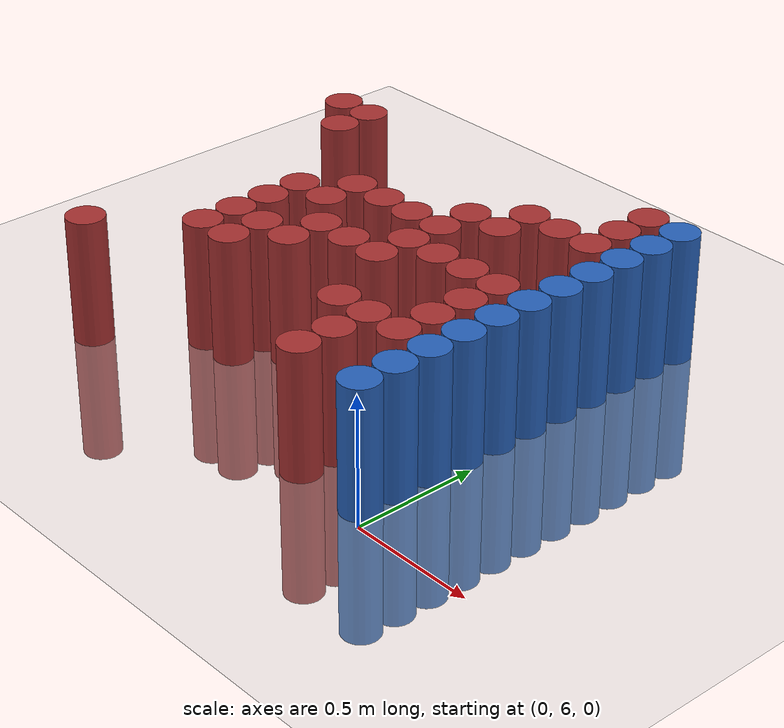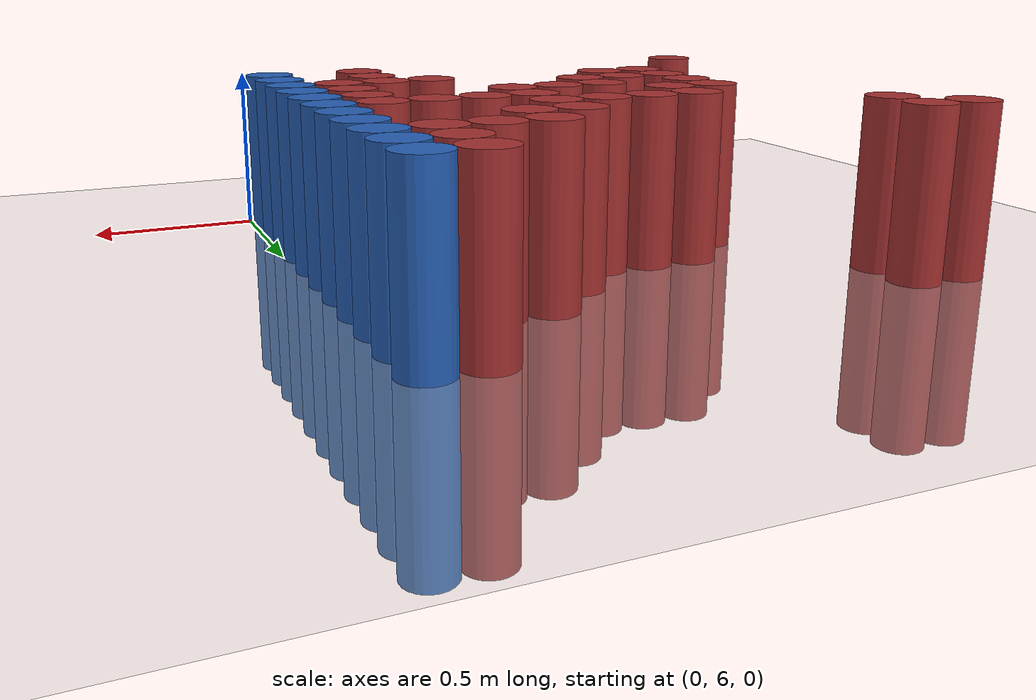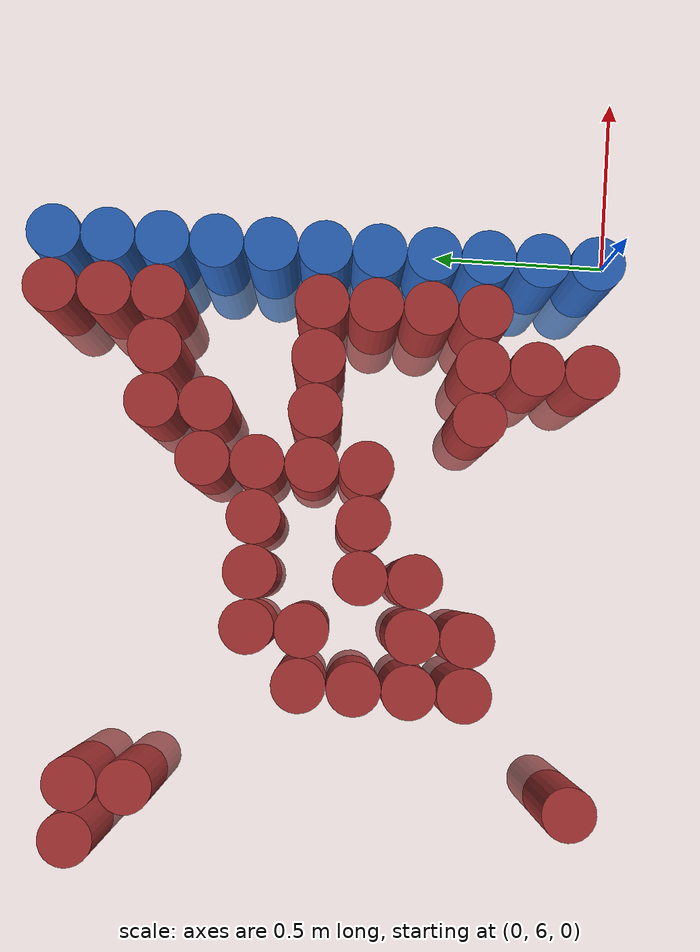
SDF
<sdf version="1.6">
 <world name="default">
  <model name="ground_plane">
   <static>1</static>
   <link name="link">
    <collision name="collision">
     <geometry><plane><normal>0 0 1</normal><size>100 100</size></plane></geometry>
     <surface><friction><ode><mu>100</mu><mu2>50</mu2></ode></friction></surface>
    </collision>
    <visual name="visual">
     <cast_shadows>0</cast_shadows>
     <geometry><plane><normal>0 0 1</normal><size>100 100</size></plane></geometry>
     <material>
      <script><uri>file://media/materials/scripts/gazebo.material</uri><name>Gazebo/Grey</name></script>
     </material>
    </visual>
   </link>
  </model>
  <model name="unit_cylinder_220">
   <static>1</static>
   <pose>-1.725000 7.425000 0.000000 0.000000 0.000000 0.000000</pose>
   <link name="link">
    <inertial>
     <mass>1</mass>
     <inertia><ixx>0.145833</ixx><ixy>0</ixy><ixz>0</ixz><iyy>0.145833</iyy><iyz>0</iyz><izz>0.125</izz></inertia>
    </inertial>
    <collision name="collision">
     <geometry><cylinder><radius>0.075000</radius><length>1</length></cylinder></geometry>
    </collision>
    <visual name="visual">
     <geometry><cylinder><radius>0.075000</radius><length>1</length></cylinder></geometry>
     <material>
      <ambient>0.648000 0.192000 0.192000 1</ambient>
      <diffuse>0.648000 0.192000 0.192000 1</diffuse>
     </material>
     <material>
      <script><name>Gazebo/Grey</name><uri>file://media/materials/scripts/gazebo.material</uri></script>
     </material>
    </visual>
   </link>
  </model>
  <model name="unit_cylinder_223">
   <static>1</static>
   <pose>-1.575000 6.075000 0.000000 0.000000 0.000000 0.000000</pose>
   <link name="link">
    <inertial>
     <mass>1</mass>
     <inertia><ixx>0.145833</ixx><ixy>0</ixy><ixz>0</ixz><iyy>0.145833</iyy><iyz>0</iyz><izz>0.125</izz></inertia>
    </inertial>
    <collision name="collision">
     <geometry><cylinder><radius>0.075000</radius><length>1</length></cylinder></geometry>
    </collision>
    <visual name="visual">
     <geometry><cylinder><radius>0.075000</radius><length>1</length></cylinder></geometry>
     <material>
      <ambient>0.648000 0.192000 0.192000 1</ambient>
      <diffuse>0.648000 0.192000 0.192000 1</diffuse>
     </material>
     <material>
      <script><name>Gazebo/Grey</name><uri>file://media/materials/scripts/gazebo.material</uri></script>
     </material>
    </visual>
   </link>
  </model>
  <model name="unit_cylinder_224">
   <static>1</static>
   <pose>-1.575000 7.275000 0.000000 0.000000 0.000000 0.000000</pose>
   <link name="link">
    <inertial>
     <mass>1</mass>
     <inertia><ixx>0.145833</ixx><ixy>0</ixy><ixz>0</ixz><iyy>0.145833</iyy><iyz>0</iyz><izz>0.125</izz></inertia>
    </inertial>
    <collision name="collision">
     <geometry><cylinder><radius>0.075000</radius><length>1</length></cylinder></geometry>
    </collision>
    <visual name="visual">
     <geometry><cylinder><radius>0.075000</radius><length>1</length></cylinder></geometry>
     <material>
      <ambient>0.648000 0.192000 0.192000 1</ambient>
      <diffuse>0.648000 0.192000 0.192000 1</diffuse>
     </material>
     <material>
      <script><name>Gazebo/Grey</name><uri>file://media/materials/scripts/gazebo.material</uri></script>
     </material>
    </visual>
   </link>
  </model>
  <model name="unit_cylinder_225">
   <static>1</static>
   <pose>-1.575000 7.425000 0.000000 0.000000 0.000000 0.000000</pose>
   <link name="link">
    <inertial>
     <mass>1</mass>
     <inertia><ixx>0.145833</ixx><ixy>0</ixy><ixz>0</ixz><iyy>0.145833</iyy><iyz>0</iyz><izz>0.125</izz></inertia>
    </inertial>
    <collision name="collision">
     <geometry><cylinder><radius>0.075000</radius><length>1</length></cylinder></geometry>
    </collision>
    <visual name="visual">
     <geometry><cylinder><radius>0.075000</radius><length>1</length></cylinder></geometry>
     <material>
      <ambient>0.648000 0.192000 0.192000 1</ambient>
      <diffuse>0.648000 0.192000 0.192000 1</diffuse>
     </material>
     <material>
      <script><name>Gazebo/Grey</name><uri>file://media/materials/scripts/gazebo.material</uri></script>
     </material>
    </visual>
   </link>
  </model>
  <model name="unit_cylinder_231">
   <static>1</static>
   <pose>-1.275000 6.375000 0.000000 0.000000 0.000000 0.000000</pose>
   <link name="link">
    <inertial>
     <mass>1</mass>
     <inertia><ixx>0.145833</ixx><ixy>0</ixy><ixz>0</ixz><iyy>0.145833</iyy><iyz>0</iyz><izz>0.125</izz></inertia>
    </inertial>
    <collision name="collision">
     <geometry><cylinder><radius>0.075000</radius><length>1</length></cylinder></geometry>
    </collision>
    <visual name="visual">
     <geometry><cylinder><radius>0.075000</radius><length>1</length></cylinder></geometry>
     <material>
      <ambient>0.648000 0.192000 0.192000 1</ambient>
      <diffuse>0.648000 0.192000 0.192000 1</diffuse>
     </material>
     <material>
      <script><name>Gazebo/Grey</name><uri>file://media/materials/scripts/gazebo.material</uri></script>
     </material>
    </visual>
   </link>
  </model>
  <model name="unit_cylinder_232">
   <static>1</static>
   <pose>-1.275000 6.525000 0.000000 0.000000 0.000000 0.000000</pose>
   <link name="link">
    <inertial>
     <mass>1</mass>
     <inertia><ixx>0.145833</ixx><ixy>0</ixy><ixz>0</ixz><iyy>0.145833</iyy><iyz>0</iyz><izz>0.125</izz></inertia>
    </inertial>
    <collision name="collision">
     <geometry><cylinder><radius>0.075000</radius><length>1</length></cylinder></geometry>
    </collision>
    <visual name="visual">
     <geometry><cylinder><radius>0.075000</radius><length>1</length></cylinder></geometry>
     <material>
      <ambient>0.648000 0.192000 0.192000 1</ambient>
      <diffuse>0.648000 0.192000 0.192000 1</diffuse>
     </material>
     <material>
      <script><name>Gazebo/Grey</name><uri>file://media/materials/scripts/gazebo.material</uri></script>
     </material>
    </visual>
   </link>
  </model>
  <model name="unit_cylinder_233">
   <static>1</static>
   <pose>-1.275000 6.675000 0.000000 0.000000 0.000000 0.000000</pose>
   <link name="link">
    <inertial>
     <mass>1</mass>
     <inertia><ixx>0.145833</ixx><ixy>0</ixy><ixz>0</ixz><iyy>0.145833</iyy><iyz>0</iyz><izz>0.125</izz></inertia>
    </inertial>
    <collision name="collision">
     <geometry><cylinder><radius>0.075000</radius><length>1</length></cylinder></geometry>
    </collision>
    <visual name="visual">
     <geometry><cylinder><radius>0.075000</radius><length>1</length></cylinder></geometry>
     <material>
      <ambient>0.648000 0.192000 0.192000 1</ambient>
      <diffuse>0.648000 0.192000 0.192000 1</diffuse>
     </material>
     <material>
      <script><name>Gazebo/Grey</name><uri>file://media/materials/scripts/gazebo.material</uri></script>
     </material>
    </visual>
   </link>
  </model>
  <model name="unit_cylinder_234">
   <static>1</static>
   <pose>-1.275000 6.825000 0.000000 0.000000 0.000000 0.000000</pose>
   <link name="link">
    <inertial>
     <mass>1</mass>
     <inertia><ixx>0.145833</ixx><ixy>0</ixy><ixz>0</ixz><iyy>0.145833</iyy><iyz>0</iyz><izz>0.125</izz></inertia>
    </inertial>
    <collision name="collision">
     <geometry><cylinder><radius>0.075000</radius><length>1</length></cylinder></geometry>
    </collision>
    <visual name="visual">
     <geometry><cylinder><radius>0.075000</radius><length>1</length></cylinder></geometry>
     <material>
      <ambient>0.648000 0.192000 0.192000 1</ambient>
      <diffuse>0.648000 0.192000 0.192000 1</diffuse>
     </material>
     <material>
      <script><name>Gazebo/Grey</name><uri>file://media/materials/scripts/gazebo.material</uri></script>
     </material>
    </visual>
   </link>
  </model>
  <model name="unit_cylinder_237">
   <static>1</static>
   <pose>-1.125000 6.375000 0.000000 0.000000 0.000000 0.000000</pose>
   <link name="link">
    <inertial>
     <mass>1</mass>
     <inertia><ixx>0.145833</ixx><ixy>0</ixy><ixz>0</ixz><iyy>0.145833</iyy><iyz>0</iyz><izz>0.125</izz></inertia>
    </inertial>
    <collision name="collision">
     <geometry><cylinder><radius>0.075000</radius><length>1</length></cylinder></geometry>
    </collision>
    <visual name="visual">
     <geometry><cylinder><radius>0.075000</radius><length>1</length></cylinder></geometry>
     <material>
      <ambient>0.648000 0.192000 0.192000 1</ambient>
      <diffuse>0.648000 0.192000 0.192000 1</diffuse>
     </material>
     <material>
      <script><name>Gazebo/Grey</name><uri>file://media/materials/scripts/gazebo.material</uri></script>
     </material>
    </visual>
   </link>
  </model>
  <model name="unit_cylinder_238">
   <static>1</static>
   <pose>-1.125000 6.525000 0.000000 0.000000 0.000000 0.000000</pose>
   <link name="link">
    <inertial>
     <mass>1</mass>
     <inertia><ixx>0.145833</ixx><ixy>0</ixy><ixz>0</ixz><iyy>0.145833</iyy><iyz>0</iyz><izz>0.125</izz></inertia>
    </inertial>
    <collision name="collision">
     <geometry><cylinder><radius>0.075000</radius><length>1</length></cylinder></geometry>
    </collision>
    <visual name="visual">
     <geometry><cylinder><radius>0.075000</radius><length>1</length></cylinder></geometry>
     <material>
      <ambient>0.648000 0.192000 0.192000 1</ambient>
      <diffuse>0.648000 0.192000 0.192000 1</diffuse>
     </material>
     <material>
      <script><name>Gazebo/Grey</name><uri>file://media/materials/scripts/gazebo.material</uri></script>
     </material>
    </visual>
   </link>
  </model>
  <model name="unit_cylinder_239">
   <static>1</static>
   <pose>-1.125000 6.825000 0.000000 0.000000 0.000000 0.000000</pose>
   <link name="link">
    <inertial>
     <mass>1</mass>
     <inertia><ixx>0.145833</ixx><ixy>0</ixy><ixz>0</ixz><iyy>0.145833</iyy><iyz>0</iyz><izz>0.125</izz></inertia>
    </inertial>
    <collision name="collision">
     <geometry><cylinder><radius>0.075000</radius><length>1</length></cylinder></geometry>
    </collision>
    <visual name="visual">
     <geometry><cylinder><radius>0.075000</radius><length>1</length></cylinder></geometry>
     <material>
      <ambient>0.648000 0.192000 0.192000 1</ambient>
      <diffuse>0.648000 0.192000 0.192000 1</diffuse>
     </material>
     <material>
      <script><name>Gazebo/Grey</name><uri>file://media/materials/scripts/gazebo.material</uri></script>
     </material>
    </visual>
   </link>
  </model>
  <model name="unit_cylinder_240">
   <static>1</static>
   <pose>-1.125000 6.975000 0.000000 0.000000 0.000000 0.000000</pose>
   <link name="link">
    <inertial>
     <mass>1</mass>
     <inertia><ixx>0.145833</ixx><ixy>0</ixy><ixz>0</ixz><iyy>0.145833</iyy><iyz>0</iyz><izz>0.125</izz></inertia>
    </inertial>
    <collision name="collision">
     <geometry><cylinder><radius>0.075000</radius><length>1</length></cylinder></geometry>
    </collision>
    <visual name="visual">
     <geometry><cylinder><radius>0.075000</radius><length>1</length></cylinder></geometry>
     <material>
      <ambient>0.648000 0.192000 0.192000 1</ambient>
      <diffuse>0.648000 0.192000 0.192000 1</diffuse>
     </material>
     <material>
      <script><name>Gazebo/Grey</name><uri>file://media/materials/scripts/gazebo.material</uri></script>
     </material>
    </visual>
   </link>
  </model>
  <model name="unit_cylinder_245">
   <static>1</static>
   <pose>-0.975000 6.525000 0.000000 0.000000 0.000000 0.000000</pose>
   <link name="link">
    <inertial>
     <mass>1</mass>
     <inertia><ixx>0.145833</ixx><ixy>0</ixy><ixz>0</ixz><iyy>0.145833</iyy><iyz>0</iyz><izz>0.125</izz></inertia>
    </inertial>
    <collision name="collision">
     <geometry><cylinder><radius>0.075000</radius><length>1</length></cylinder></geometry>
    </collision>
    <visual name="visual">
     <geometry><cylinder><radius>0.075000</radius><length>1</length></cylinder></geometry>
     <material>
      <ambient>0.648000 0.192000 0.192000 1</ambient>
      <diffuse>0.648000 0.192000 0.192000 1</diffuse>
     </material>
     <material>
      <script><name>Gazebo/Grey</name><uri>file://media/materials/scripts/gazebo.material</uri></script>
     </material>
    </visual>
   </link>
  </model>
  <model name="unit_cylinder_246">
   <static>1</static>
   <pose>-0.975000 6.675000 0.000000 0.000000 0.000000 0.000000</pose>
   <link name="link">
    <inertial>
     <mass>1</mass>
     <inertia><ixx>0.145833</ixx><ixy>0</ixy><ixz>0</ixz><iyy>0.145833</iyy><iyz>0</iyz><izz>0.125</izz></inertia>
    </inertial>
    <collision name="collision">
     <geometry><cylinder><radius>0.075000</radius><length>1</length></cylinder></geometry>
    </collision>
    <visual name="visual">
     <geometry><cylinder><radius>0.075000</radius><length>1</length></cylinder></geometry>
     <material>
      <ambient>0.648000 0.192000 0.192000 1</ambient>
      <diffuse>0.648000 0.192000 0.192000 1</diffuse>
     </material>
     <material>
      <script><name>Gazebo/Grey</name><uri>file://media/materials/scripts/gazebo.material</uri></script>
     </material>
    </visual>
   </link>
  </model>
  <model name="unit_cylinder_247">
   <static>1</static>
   <pose>-0.975000 6.975000 0.000000 0.000000 0.000000 0.000000</pose>
   <link name="link">
    <inertial>
     <mass>1</mass>
     <inertia><ixx>0.145833</ixx><ixy>0</ixy><ixz>0</ixz><iyy>0.145833</iyy><iyz>0</iyz><izz>0.125</izz></inertia>
    </inertial>
    <collision name="collision">
     <geometry><cylinder><radius>0.075000</radius><length>1</length></cylinder></geometry>
    </collision>
    <visual name="visual">
     <geometry><cylinder><radius>0.075000</radius><length>1</length></cylinder></geometry>
     <material>
      <ambient>0.648000 0.192000 0.192000 1</ambient>
      <diffuse>0.648000 0.192000 0.192000 1</diffuse>
     </material>
     <material>
      <script><name>Gazebo/Grey</name><uri>file://media/materials/scripts/gazebo.material</uri></script>
     </material>
    </visual>
   </link>
  </model>
  <model name="unit_cylinder_251">
   <static>1</static>
   <pose>-0.825000 6.675000 0.000000 0.000000 0.000000 0.000000</pose>
   <link name="link">
    <inertial>
     <mass>1</mass>
     <inertia><ixx>0.145833</ixx><ixy>0</ixy><ixz>0</ixz><iyy>0.145833</iyy><iyz>0</iyz><izz>0.125</izz></inertia>
    </inertial>
    <collision name="collision">
     <geometry><cylinder><radius>0.075000</radius><length>1</length></cylinder></geometry>
    </collision>
    <visual name="visual">
     <geometry><cylinder><radius>0.075000</radius><length>1</length></cylinder></geometry>
     <material>
      <ambient>0.648000 0.192000 0.192000 1</ambient>
      <diffuse>0.648000 0.192000 0.192000 1</diffuse>
     </material>
     <material>
      <script><name>Gazebo/Grey</name><uri>file://media/materials/scripts/gazebo.material</uri></script>
     </material>
    </visual>
   </link>
  </model>
  <model name="unit_cylinder_252">
   <static>1</static>
   <pose>-0.825000 6.975000 0.000000 0.000000 0.000000 0.000000</pose>
   <link name="link">
    <inertial>
     <mass>1</mass>
     <inertia><ixx>0.145833</ixx><ixy>0</ixy><ixz>0</ixz><iyy>0.145833</iyy><iyz>0</iyz><izz>0.125</izz></inertia>
    </inertial>
    <collision name="collision">
     <geometry><cylinder><radius>0.075000</radius><length>1</length></cylinder></geometry>
    </collision>
    <visual name="visual">
     <geometry><cylinder><radius>0.075000</radius><length>1</length></cylinder></geometry>
     <material>
      <ambient>0.648000 0.192000 0.192000 1</ambient>
      <diffuse>0.648000 0.192000 0.192000 1</diffuse>
     </material>
     <material>
      <script><name>Gazebo/Grey</name><uri>file://media/materials/scripts/gazebo.material</uri></script>
     </material>
    </visual>
   </link>
  </model>
  <model name="unit_cylinder_255">
   <static>1</static>
   <pose>-0.675000 6.675000 0.000000 0.000000 0.000000 0.000000</pose>
   <link name="link">
    <inertial>
     <mass>1</mass>
     <inertia><ixx>0.145833</ixx><ixy>0</ixy><ixz>0</ixz><iyy>0.145833</iyy><iyz>0</iyz><izz>0.125</izz></inertia>
    </inertial>
    <collision name="collision">
     <geometry><cylinder><radius>0.075000</radius><length>1</length></cylinder></geometry>
    </collision>
    <visual name="visual">
     <geometry><cylinder><radius>0.075000</radius><length>1</length></cylinder></geometry>
     <material>
      <ambient>0.648000 0.192000 0.192000 1</ambient>
      <diffuse>0.648000 0.192000 0.192000 1</diffuse>
     </material>
     <material>
      <script><name>Gazebo/Grey</name><uri>file://media/materials/scripts/gazebo.material</uri></script>
     </material>
    </visual>
   </link>
  </model>
  <model name="unit_cylinder_256">
   <static>1</static>
   <pose>-0.675000 6.825000 0.000000 0.000000 0.000000 0.000000</pose>
   <link name="link">
    <inertial>
     <mass>1</mass>
     <inertia><ixx>0.145833</ixx><ixy>0</ixy><ixz>0</ixz><iyy>0.145833</iyy><iyz>0</iyz><izz>0.125</izz></inertia>
    </inertial>
    <collision name="collision">
     <geometry><cylinder><radius>0.075000</radius><length>1</length></cylinder></geometry>
    </collision>
    <visual name="visual">
     <geometry><cylinder><radius>0.075000</radius><length>1</length></cylinder></geometry>
     <material>
      <ambient>0.648000 0.192000 0.192000 1</ambient>
      <diffuse>0.648000 0.192000 0.192000 1</diffuse>
     </material>
     <material>
      <script><name>Gazebo/Grey</name><uri>file://media/materials/scripts/gazebo.material</uri></script>
     </material>
    </visual>
   </link>
  </model>
  <model name="unit_cylinder_257">
   <static>1</static>
   <pose>-0.675000 6.975000 0.000000 0.000000 0.000000 0.000000</pose>
   <link name="link">
    <inertial>
     <mass>1</mass>
     <inertia><ixx>0.145833</ixx><ixy>0</ixy><ixz>0</ixz><iyy>0.145833</iyy><iyz>0</iyz><izz>0.125</izz></inertia>
    </inertial>
    <collision name="collision">
     <geometry><cylinder><radius>0.075000</radius><length>1</length></cylinder></geometry>
    </collision>
    <visual name="visual">
     <geometry><cylinder><radius>0.075000</radius><length>1</length></cylinder></geometry>
     <material>
      <ambient>0.648000 0.192000 0.192000 1</ambient>
      <diffuse>0.648000 0.192000 0.192000 1</diffuse>
     </material>
     <material>
      <script><name>Gazebo/Grey</name><uri>file://media/materials/scripts/gazebo.material</uri></script>
     </material>
    </visual>
   </link>
  </model>
  <model name="unit_cylinder_258">
   <static>1</static>
   <pose>-0.675000 7.125000 0.000000 0.000000 0.000000 0.000000</pose>
   <link name="link">
    <inertial>
     <mass>1</mass>
     <inertia><ixx>0.145833</ixx><ixy>0</ixy><ixz>0</ixz><iyy>0.145833</iyy><iyz>0</iyz><izz>0.125</izz></inertia>
    </inertial>
    <collision name="collision">
     <geometry><cylinder><radius>0.075000</radius><length>1</length></cylinder></geometry>
    </collision>
    <visual name="visual">
     <geometry><cylinder><radius>0.075000</radius><length>1</length></cylinder></geometry>
     <material>
      <ambient>0.648000 0.192000 0.192000 1</ambient>
      <diffuse>0.648000 0.192000 0.192000 1</diffuse>
     </material>
     <material>
      <script><name>Gazebo/Grey</name><uri>file://media/materials/scripts/gazebo.material</uri></script>
     </material>
    </visual>
   </link>
  </model>
  <model name="unit_cylinder_265">
   <static>1</static>
   <pose>-0.525000 6.375000 0.000000 0.000000 0.000000 0.000000</pose>
   <link name="link">
    <inertial>
     <mass>1</mass>
     <inertia><ixx>0.145833</ixx><ixy>0</ixy><ixz>0</ixz><iyy>0.145833</iyy><iyz>0</iyz><izz>0.125</izz></inertia>
    </inertial>
    <collision name="collision">
     <geometry><cylinder><radius>0.075000</radius><length>1</length></cylinder></geometry>
    </collision>
    <visual name="visual">
     <geometry><cylinder><radius>0.075000</radius><length>1</length></cylinder></geometry>
     <material>
      <ambient>0.648000 0.192000 0.192000 1</ambient>
      <diffuse>0.648000 0.192000 0.192000 1</diffuse>
     </material>
     <material>
      <script><name>Gazebo/Grey</name><uri>file://media/materials/scripts/gazebo.material</uri></script>
     </material>
    </visual>
   </link>
  </model>
  <model name="unit_cylinder_266">
   <static>1</static>
   <pose>-0.525000 6.825000 0.000000 0.000000 0.000000 0.000000</pose>
   <link name="link">
    <inertial>
     <mass>1</mass>
     <inertia><ixx>0.145833</ixx><ixy>0</ixy><ixz>0</ixz><iyy>0.145833</iyy><iyz>0</iyz><izz>0.125</izz></inertia>
    </inertial>
    <collision name="collision">
     <geometry><cylinder><radius>0.075000</radius><length>1</length></cylinder></geometry>
    </collision>
    <visual name="visual">
     <geometry><cylinder><radius>0.075000</radius><length>1</length></cylinder></geometry>
     <material>
      <ambient>0.648000 0.192000 0.192000 1</ambient>
      <diffuse>0.648000 0.192000 0.192000 1</diffuse>
     </material>
     <material>
      <script><name>Gazebo/Grey</name><uri>file://media/materials/scripts/gazebo.material</uri></script>
     </material>
    </visual>
   </link>
  </model>
  <model name="unit_cylinder_267">
   <static>1</static>
   <pose>-0.525000 7.125000 0.000000 0.000000 0.000000 0.000000</pose>
   <link name="link">
    <inertial>
     <mass>1</mass>
     <inertia><ixx>0.145833</ixx><ixy>0</ixy><ixz>0</ixz><iyy>0.145833</iyy><iyz>0</iyz><izz>0.125</izz></inertia>
    </inertial>
    <collision name="collision">
     <geometry><cylinder><radius>0.075000</radius><length>1</length></cylinder></geometry>
    </collision>
    <visual name="visual">
     <geometry><cylinder><radius>0.075000</radius><length>1</length></cylinder></geometry>
     <material>
      <ambient>0.648000 0.192000 0.192000 1</ambient>
      <diffuse>0.648000 0.192000 0.192000 1</diffuse>
     </material>
     <material>
      <script><name>Gazebo/Grey</name><uri>file://media/materials/scripts/gazebo.material</uri></script>
     </material>
    </visual>
   </link>
  </model>
  <model name="unit_cylinder_268">
   <static>1</static>
   <pose>-0.525000 7.275000 0.000000 0.000000 0.000000 0.000000</pose>
   <link name="link">
    <inertial>
     <mass>1</mass>
     <inertia><ixx>0.145833</ixx><ixy>0</ixy><ixz>0</ixz><iyy>0.145833</iyy><iyz>0</iyz><izz>0.125</izz></inertia>
    </inertial>
    <collision name="collision">
     <geometry><cylinder><radius>0.075000</radius><length>1</length></cylinder></geometry>
    </collision>
    <visual name="visual">
     <geometry><cylinder><radius>0.075000</radius><length>1</length></cylinder></geometry>
     <material>
      <ambient>0.648000 0.192000 0.192000 1</ambient>
      <diffuse>0.648000 0.192000 0.192000 1</diffuse>
     </material>
     <material>
      <script><name>Gazebo/Grey</name><uri>file://media/materials/scripts/gazebo.material</uri></script>
     </material>
    </visual>
   </link>
  </model>
  <model name="unit_cylinder_277">
   <static>1</static>
   <pose>-0.375000 6.075000 0.000000 0.000000 0.000000 0.000000</pose>
   <link name="link">
    <inertial>
     <mass>1</mass>
     <inertia><ixx>0.145833</ixx><ixy>0</ixy><ixz>0</ixz><iyy>0.145833</iyy><iyz>0</iyz><izz>0.125</izz></inertia>
    </inertial>
    <collision name="collision">
     <geometry><cylinder><radius>0.075000</radius><length>1</length></cylinder></geometry>
    </collision>
    <visual name="visual">
     <geometry><cylinder><radius>0.075000</radius><length>1</length></cylinder></geometry>
     <material>
      <ambient>0.648000 0.192000 0.192000 1</ambient>
      <diffuse>0.648000 0.192000 0.192000 1</diffuse>
     </material>
     <material>
      <script><name>Gazebo/Grey</name><uri>file://media/materials/scripts/gazebo.material</uri></script>
     </material>
    </visual>
   </link>
  </model>
  <model name="unit_cylinder_278">
   <static>1</static>
   <pose>-0.375000 6.225000 0.000000 0.000000 0.000000 0.000000</pose>
   <link name="link">
    <inertial>
     <mass>1</mass>
     <inertia><ixx>0.145833</ixx><ixy>0</ixy><ixz>0</ixz><iyy>0.145833</iyy><iyz>0</iyz><izz>0.125</izz></inertia>
    </inertial>
    <collision name="collision">
     <geometry><cylinder><radius>0.075000</radius><length>1</length></cylinder></geometry>
    </collision>
    <visual name="visual">
     <geometry><cylinder><radius>0.075000</radius><length>1</length></cylinder></geometry>
     <material>
      <ambient>0.648000 0.192000 0.192000 1</ambient>
      <diffuse>0.648000 0.192000 0.192000 1</diffuse>
     </material>
     <material>
      <script><name>Gazebo/Grey</name><uri>file://media/materials/scripts/gazebo.material</uri></script>
     </material>
    </visual>
   </link>
  </model>
  <model name="unit_cylinder_279">
   <static>1</static>
   <pose>-0.375000 6.375000 0.000000 0.000000 0.000000 0.000000</pose>
   <link name="link">
    <inertial>
     <mass>1</mass>
     <inertia><ixx>0.145833</ixx><ixy>0</ixy><ixz>0</ixz><iyy>0.145833</iyy><iyz>0</iyz><izz>0.125</izz></inertia>
    </inertial>
    <collision name="collision">
     <geometry><cylinder><radius>0.075000</radius><length>1</length></cylinder></geometry>
    </collision>
    <visual name="visual">
     <geometry><cylinder><radius>0.075000</radius><length>1</length></cylinder></geometry>
     <material>
      <ambient>0.648000 0.192000 0.192000 1</ambient>
      <diffuse>0.648000 0.192000 0.192000 1</diffuse>
     </material>
     <material>
      <script><name>Gazebo/Grey</name><uri>file://media/materials/scripts/gazebo.material</uri></script>
     </material>
    </visual>
   </link>
  </model>
  <model name="unit_cylinder_280">
   <static>1</static>
   <pose>-0.375000 6.825000 0.000000 0.000000 0.000000 0.000000</pose>
   <link name="link">
    <inertial>
     <mass>1</mass>
     <inertia><ixx>0.145833</ixx><ixy>0</ixy><ixz>0</ixz><iyy>0.145833</iyy><iyz>0</iyz><izz>0.125</izz></inertia>
    </inertial>
    <collision name="collision">
     <geometry><cylinder><radius>0.075000</radius><length>1</length></cylinder></geometry>
    </collision>
    <visual name="visual">
     <geometry><cylinder><radius>0.075000</radius><length>1</length></cylinder></geometry>
     <material>
      <ambient>0.648000 0.192000 0.192000 1</ambient>
      <diffuse>0.648000 0.192000 0.192000 1</diffuse>
     </material>
     <material>
      <script><name>Gazebo/Grey</name><uri>file://media/materials/scripts/gazebo.material</uri></script>
     </material>
    </visual>
   </link>
  </model>
  <model name="unit_cylinder_281">
   <static>1</static>
   <pose>-0.375000 7.275000 0.000000 0.000000 0.000000 0.000000</pose>
   <link name="link">
    <inertial>
     <mass>1</mass>
     <inertia><ixx>0.145833</ixx><ixy>0</ixy><ixz>0</ixz><iyy>0.145833</iyy><iyz>0</iyz><izz>0.125</izz></inertia>
    </inertial>
    <collision name="collision">
     <geometry><cylinder><radius>0.075000</radius><length>1</length></cylinder></geometry>
    </collision>
    <visual name="visual">
     <geometry><cylinder><radius>0.075000</radius><length>1</length></cylinder></geometry>
     <material>
      <ambient>0.648000 0.192000 0.192000 1</ambient>
      <diffuse>0.648000 0.192000 0.192000 1</diffuse>
     </material>
     <material>
      <script><name>Gazebo/Grey</name><uri>file://media/materials/scripts/gazebo.material</uri></script>
     </material>
    </visual>
   </link>
  </model>
  <model name="unit_cylinder_292">
   <static>1</static>
   <pose>-0.225000 6.375000 0.000000 0.000000 0.000000 0.000000</pose>
   <link name="link">
    <inertial>
     <mass>1</mass>
     <inertia><ixx>0.145833</ixx><ixy>0</ixy><ixz>0</ixz><iyy>0.145833</iyy><iyz>0</iyz><izz>0.125</izz></inertia>
    </inertial>
    <collision name="collision">
     <geometry><cylinder><radius>0.075000</radius><length>1</length></cylinder></geometry>
    </collision>
    <visual name="visual">
     <geometry><cylinder><radius>0.075000</radius><length>1</length></cylinder></geometry>
     <material>
      <ambient>0.648000 0.192000 0.192000 1</ambient>
      <diffuse>0.648000 0.192000 0.192000 1</diffuse>
     </material>
     <material>
      <script><name>Gazebo/Grey</name><uri>file://media/materials/scripts/gazebo.material</uri></script>
     </material>
    </visual>
   </link>
  </model>
  <model name="unit_cylinder_293">
   <static>1</static>
   <pose>-0.225000 6.525000 0.000000 0.000000 0.000000 0.000000</pose>
   <link name="link">
    <inertial>
     <mass>1</mass>
     <inertia><ixx>0.145833</ixx><ixy>0</ixy><ixz>0</ixz><iyy>0.145833</iyy><iyz>0</iyz><izz>0.125</izz></inertia>
    </inertial>
    <collision name="collision">
     <geometry><cylinder><radius>0.075000</radius><length>1</length></cylinder></geometry>
    </collision>
    <visual name="visual">
     <geometry><cylinder><radius>0.075000</radius><length>1</length></cylinder></geometry>
     <material>
      <ambient>0.648000 0.192000 0.192000 1</ambient>
      <diffuse>0.648000 0.192000 0.192000 1</diffuse>
     </material>
     <material>
      <script><name>Gazebo/Grey</name><uri>file://media/materials/scripts/gazebo.material</uri></script>
     </material>
    </visual>
   </link>
  </model>
  <model name="unit_cylinder_294">
   <static>1</static>
   <pose>-0.225000 6.675000 0.000000 0.000000 0.000000 0.000000</pose>
   <link name="link">
    <inertial>
     <mass>1</mass>
     <inertia><ixx>0.145833</ixx><ixy>0</ixy><ixz>0</ixz><iyy>0.145833</iyy><iyz>0</iyz><izz>0.125</izz></inertia>
    </inertial>
    <collision name="collision">
     <geometry><cylinder><radius>0.075000</radius><length>1</length></cylinder></geometry>
    </collision>
    <visual name="visual">
     <geometry><cylinder><radius>0.075000</radius><length>1</length></cylinder></geometry>
     <material>
      <ambient>0.648000 0.192000 0.192000 1</ambient>
      <diffuse>0.648000 0.192000 0.192000 1</diffuse>
     </material>
     <material>
      <script><name>Gazebo/Grey</name><uri>file://media/materials/scripts/gazebo.material</uri></script>
     </material>
    </visual>
   </link>
  </model>
  <model name="unit_cylinder_295">
   <static>1</static>
   <pose>-0.225000 6.825000 0.000000 0.000000 0.000000 0.000000</pose>
   <link name="link">
    <inertial>
     <mass>1</mass>
     <inertia><ixx>0.145833</ixx><ixy>0</ixy><ixz>0</ixz><iyy>0.145833</iyy><iyz>0</iyz><izz>0.125</izz></inertia>
    </inertial>
    <collision name="collision">
     <geometry><cylinder><radius>0.075000</radius><length>1</length></cylinder></geometry>
    </collision>
    <visual name="visual">
     <geometry><cylinder><radius>0.075000</radius><length>1</length></cylinder></geometry>
     <material>
      <ambient>0.648000 0.192000 0.192000 1</ambient>
      <diffuse>0.648000 0.192000 0.192000 1</diffuse>
     </material>
     <material>
      <script><name>Gazebo/Grey</name><uri>file://media/materials/scripts/gazebo.material</uri></script>
     </material>
    </visual>
   </link>
  </model>
  <model name="unit_cylinder_296">
   <static>1</static>
   <pose>-0.225000 7.275000 0.000000 0.000000 0.000000 0.000000</pose>
   <link name="link">
    <inertial>
     <mass>1</mass>
     <inertia><ixx>0.145833</ixx><ixy>0</ixy><ixz>0</ixz><iyy>0.145833</iyy><iyz>0</iyz><izz>0.125</izz></inertia>
    </inertial>
    <collision name="collision">
     <geometry><cylinder><radius>0.075000</radius><length>1</length></cylinder></geometry>
    </collision>
    <visual name="visual">
     <geometry><cylinder><radius>0.075000</radius><length>1</length></cylinder></geometry>
     <material>
      <ambient>0.648000 0.192000 0.192000 1</ambient>
      <diffuse>0.648000 0.192000 0.192000 1</diffuse>
     </material>
     <material>
      <script><name>Gazebo/Grey</name><uri>file://media/materials/scripts/gazebo.material</uri></script>
     </material>
    </visual>
   </link>
  </model>
  <model name="unit_cylinder_297">
   <static>1</static>
   <pose>-0.225000 7.425000 0.000000 0.000000 0.000000 0.000000</pose>
   <link name="link">
    <inertial>
     <mass>1</mass>
     <inertia><ixx>0.145833</ixx><ixy>0</ixy><ixz>0</ixz><iyy>0.145833</iyy><iyz>0</iyz><izz>0.125</izz></inertia>
    </inertial>
    <collision name="collision">
     <geometry><cylinder><radius>0.075000</radius><length>1</length></cylinder></geometry>
    </collision>
    <visual name="visual">
     <geometry><cylinder><radius>0.075000</radius><length>1</length></cylinder></geometry>
     <material>
      <ambient>0.648000 0.192000 0.192000 1</ambient>
      <diffuse>0.648000 0.192000 0.192000 1</diffuse>
     </material>
     <material>
      <script><name>Gazebo/Grey</name><uri>file://media/materials/scripts/gazebo.material</uri></script>
     </material>
    </visual>
   </link>
  </model>
  <model name="unit_cylinder_298">
   <static>1</static>
   <pose>-0.225000 7.575000 0.000000 0.000000 0.000000 0.000000</pose>
   <link name="link">
    <inertial>
     <mass>1</mass>
     <inertia><ixx>0.145833</ixx><ixy>0</ixy><ixz>0</ixz><iyy>0.145833</iyy><iyz>0</iyz><izz>0.125</izz></inertia>
    </inertial>
    <collision name="collision">
     <geometry><cylinder><radius>0.075000</radius><length>1</length></cylinder></geometry>
    </collision>
    <visual name="visual">
     <geometry><cylinder><radius>0.075000</radius><length>1</length></cylinder></geometry>
     <material>
      <ambient>0.648000 0.192000 0.192000 1</ambient>
      <diffuse>0.648000 0.192000 0.192000 1</diffuse>
     </material>
     <material>
      <script><name>Gazebo/Grey</name><uri>file://media/materials/scripts/gazebo.material</uri></script>
     </material>
    </visual>
   </link>
  </model>
  <model name="unit_cylinder_312">
   <static>1</static>
   <pose>-0.075000 6.075000 0.000000 0.000000 0.000000 0.000000</pose>
   <link name="link">
    <inertial>
     <mass>1</mass>
     <inertia><ixx>0.145833</ixx><ixy>0</ixy><ixz>0</ixz><iyy>0.145833</iyy><iyz>0</iyz><izz>0.125</izz></inertia>
    </inertial>
    <collision name="collision">
     <geometry><cylinder><radius>0.075000</radius><length>1</length></cylinder></geometry>
    </collision>
    <visual name="visual">
     <geometry><cylinder><radius>0.075000</radius><length>1</length></cylinder></geometry>
     <material>
      <ambient>0.152000 0.379000 0.720000 1</ambient>
      <diffuse>0.152000 0.379000 0.720000 1</diffuse>
     </material>
     <material>
      <script><name>Gazebo/Grey</name><uri>file://media/materials/scripts/gazebo.material</uri></script>
     </material>
    </visual>
   </link>
  </model>
  <model name="unit_cylinder_313">
   <static>1</static>
   <pose>-0.075000 6.225000 0.000000 0.000000 0.000000 0.000000</pose>
   <link name="link">
    <inertial>
     <mass>1</mass>
     <inertia><ixx>0.145833</ixx><ixy>0</ixy><ixz>0</ixz><iyy>0.145833</iyy><iyz>0</iyz><izz>0.125</izz></inertia>
    </inertial>
    <collision name="collision">
     <geometry><cylinder><radius>0.075000</radius><length>1</length></cylinder></geometry>
    </collision>
    <visual name="visual">
     <geometry><cylinder><radius>0.075000</radius><length>1</length></cylinder></geometry>
     <material>
      <ambient>0.152000 0.379000 0.720000 1</ambient>
      <diffuse>0.152000 0.379000 0.720000 1</diffuse>
     </material>
     <material>
      <script><name>Gazebo/Grey</name><uri>file://media/materials/scripts/gazebo.material</uri></script>
     </material>
    </visual>
   </link>
  </model>
  <model name="unit_cylinder_314">
   <static>1</static>
   <pose>-0.075000 6.375000 0.000000 0.000000 0.000000 0.000000</pose>
   <link name="link">
    <inertial>
     <mass>1</mass>
     <inertia><ixx>0.145833</ixx><ixy>0</ixy><ixz>0</ixz><iyy>0.145833</iyy><iyz>0</iyz><izz>0.125</izz></inertia>
    </inertial>
    <collision name="collision">
     <geometry><cylinder><radius>0.075000</radius><length>1</length></cylinder></geometry>
    </collision>
    <visual name="visual">
     <geometry><cylinder><radius>0.075000</radius><length>1</length></cylinder></geometry>
     <material>
      <ambient>0.152000 0.379000 0.720000 1</ambient>
      <diffuse>0.152000 0.379000 0.720000 1</diffuse>
     </material>
     <material>
      <script><name>Gazebo/Grey</name><uri>file://media/materials/scripts/gazebo.material</uri></script>
     </material>
    </visual>
   </link>
  </model>
  <model name="unit_cylinder_315">
   <static>1</static>
   <pose>-0.075000 6.525000 0.000000 0.000000 0.000000 0.000000</pose>
   <link name="link">
    <inertial>
     <mass>1</mass>
     <inertia><ixx>0.145833</ixx><ixy>0</ixy><ixz>0</ixz><iyy>0.145833</iyy><iyz>0</iyz><izz>0.125</izz></inertia>
    </inertial>
    <collision name="collision">
     <geometry><cylinder><radius>0.075000</radius><length>1</length></cylinder></geometry>
    </collision>
    <visual name="visual">
     <geometry><cylinder><radius>0.075000</radius><length>1</length></cylinder></geometry>
     <material>
      <ambient>0.152000 0.379000 0.720000 1</ambient>
      <diffuse>0.152000 0.379000 0.720000 1</diffuse>
     </material>
     <material>
      <script><name>Gazebo/Grey</name><uri>file://media/materials/scripts/gazebo.material</uri></script>
     </material>
    </visual>
   </link>
  </model>
  <model name="unit_cylinder_316">
   <static>1</static>
   <pose>-0.075000 6.675000 0.000000 0.000000 0.000000 0.000000</pose>
   <link name="link">
    <inertial>
     <mass>1</mass>
     <inertia><ixx>0.145833</ixx><ixy>0</ixy><ixz>0</ixz><iyy>0.145833</iyy><iyz>0</iyz><izz>0.125</izz></inertia>
    </inertial>
    <collision name="collision">
     <geometry><cylinder><radius>0.075000</radius><length>1</length></cylinder></geometry>
    </collision>
    <visual name="visual">
     <geometry><cylinder><radius>0.075000</radius><length>1</length></cylinder></geometry>
     <material>
      <ambient>0.152000 0.379000 0.720000 1</ambient>
      <diffuse>0.152000 0.379000 0.720000 1</diffuse>
     </material>
     <material>
      <script><name>Gazebo/Grey</name><uri>file://media/materials/scripts/gazebo.material</uri></script>
     </material>
    </visual>
   </link>
  </model>
  <model name="unit_cylinder_317">
   <static>1</static>
   <pose>-0.075000 6.825000 0.000000 0.000000 0.000000 0.000000</pose>
   <link name="link">
    <inertial>
     <mass>1</mass>
     <inertia><ixx>0.145833</ixx><ixy>0</ixy><ixz>0</ixz><iyy>0.145833</iyy><iyz>0</iyz><izz>0.125</izz></inertia>
    </inertial>
    <collision name="collision">
     <geometry><cylinder><radius>0.075000</radius><length>1</length></cylinder></geometry>
    </collision>
    <visual name="visual">
     <geometry><cylinder><radius>0.075000</radius><length>1</length></cylinder></geometry>
     <material>
      <ambient>0.152000 0.379000 0.720000 1</ambient>
      <diffuse>0.152000 0.379000 0.720000 1</diffuse>
     </material>
     <material>
      <script><name>Gazebo/Grey</name><uri>file://media/materials/scripts/gazebo.material</uri></script>
     </material>
    </visual>
   </link>
  </model>
  <model name="unit_cylinder_318">
   <static>1</static>
   <pose>-0.075000 6.975000 0.000000 0.000000 0.000000 0.000000</pose>
   <link name="link">
    <inertial>
     <mass>1</mass>
     <inertia><ixx>0.145833</ixx><ixy>0</ixy><ixz>0</ixz><iyy>0.145833</iyy><iyz>0</iyz><izz>0.125</izz></inertia>
    </inertial>
    <collision name="collision">
     <geometry><cylinder><radius>0.075000</radius><length>1</length></cylinder></geometry>
    </collision>
    <visual name="visual">
     <geometry><cylinder><radius>0.075000</radius><length>1</length></cylinder></geometry>
     <material>
      <ambient>0.152000 0.379000 0.720000 1</ambient>
      <diffuse>0.152000 0.379000 0.720000 1</diffuse>
     </material>
     <material>
      <script><name>Gazebo/Grey</name><uri>file://media/materials/scripts/gazebo.material</uri></script>
     </material>
    </visual>
   </link>
  </model>
  <model name="unit_cylinder_319">
   <static>1</static>
   <pose>-0.075000 7.125000 0.000000 0.000000 0.000000 0.000000</pose>
   <link name="link">
    <inertial>
     <mass>1</mass>
     <inertia><ixx>0.145833</ixx><ixy>0</ixy><ixz>0</ixz><iyy>0.145833</iyy><iyz>0</iyz><izz>0.125</izz></inertia>
    </inertial>
    <collision name="collision">
     <geometry><cylinder><radius>0.075000</radius><length>1</length></cylinder></geometry>
    </collision>
    <visual name="visual">
     <geometry><cylinder><radius>0.075000</radius><length>1</length></cylinder></geometry>
     <material>
      <ambient>0.152000 0.379000 0.720000 1</ambient>
      <diffuse>0.152000 0.379000 0.720000 1</diffuse>
     </material>
     <material>
      <script><name>Gazebo/Grey</name><uri>file://media/materials/scripts/gazebo.material</uri></script>
     </material>
    </visual>
   </link>
  </model>
  <model name="unit_cylinder_320">
   <static>1</static>
   <pose>-0.075000 7.275000 0.000000 0.000000 0.000000 0.000000</pose>
   <link name="link">
    <inertial>
     <mass>1</mass>
     <inertia><ixx>0.145833</ixx><ixy>0</ixy><ixz>0</ixz><iyy>0.145833</iyy><iyz>0</iyz><izz>0.125</izz></inertia>
    </inertial>
    <collision name="collision">
     <geometry><cylinder><radius>0.075000</radius><length>1</length></cylinder></geometry>
    </collision>
    <visual name="visual">
     <geometry><cylinder><radius>0.075000</radius><length>1</length></cylinder></geometry>
     <material>
      <ambient>0.152000 0.379000 0.720000 1</ambient>
      <diffuse>0.152000 0.379000 0.720000 1</diffuse>
     </material>
     <material>
      <script><name>Gazebo/Grey</name><uri>file://media/materials/scripts/gazebo.material</uri></script>
     </material>
    </visual>
   </link>
  </model>
  <model name="unit_cylinder_321">
   <static>1</static>
   <pose>-0.075000 7.425000 0.000000 0.000000 0.000000 0.000000</pose>
   <link name="link">
    <inertial>
     <mass>1</mass>
     <inertia><ixx>0.145833</ixx><ixy>0</ixy><ixz>0</ixz><iyy>0.145833</iyy><iyz>0</iyz><izz>0.125</izz></inertia>
    </inertial>
    <collision name="collision">
     <geometry><cylinder><radius>0.075000</radius><length>1</length></cylinder></geometry>
    </collision>
    <visual name="visual">
     <geometry><cylinder><radius>0.075000</radius><length>1</length></cylinder></geometry>
     <material>
      <ambient>0.152000 0.379000 0.720000 1</ambient>
      <diffuse>0.152000 0.379000 0.720000 1</diffuse>
     </material>
     <material>
      <script><name>Gazebo/Grey</name><uri>file://media/materials/scripts/gazebo.material</uri></script>
     </material>
    </visual>
   </link>
  </model>
  <model name="unit_cylinder_322">
   <static>1</static>
   <pose>-0.075000 7.575000 0.000000 0.000000 0.000000 0.000000</pose>
   <link name="link">
    <inertial>
     <mass>1</mass>
     <inertia><ixx>0.145833</ixx><ixy>0</ixy><ixz>0</ixz><iyy>0.145833</iyy><iyz>0</iyz><izz>0.125</izz></inertia>
    </inertial>
    <collision name="collision">
     <geometry><cylinder><radius>0.075000</radius><length>1</length></cylinder></geometry>
    </collision>
    <visual name="visual">
     <geometry><cylinder><radius>0.075000</radius><length>1</length></cylinder></geometry>
     <material>
      <ambient>0.152000 0.379000 0.720000 1</ambient>
      <diffuse>0.152000 0.379000 0.720000 1</diffuse>
     </material>
     <material>
      <script><name>Gazebo/Grey</name><uri>file://media/materials/scripts/gazebo.material</uri></script>
     </material>
    </visual>
   </link>
  </model>
 </world>
</sdf>
